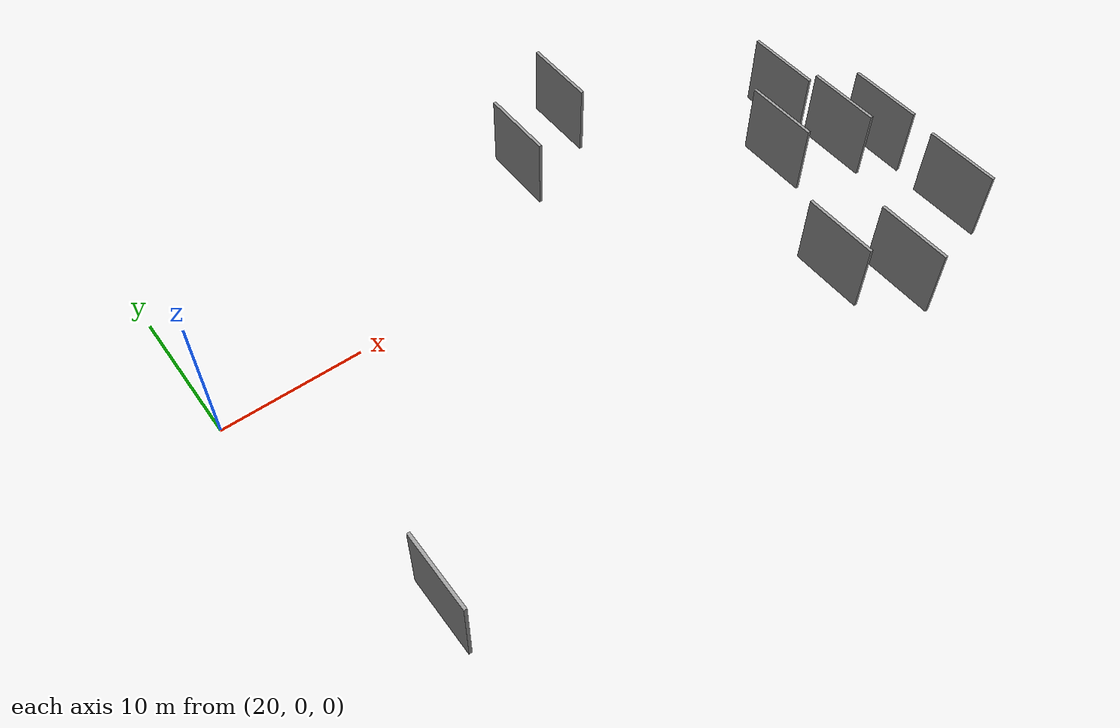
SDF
<sdf version="1.6">
 <world name="default">
  <scene>
   <sky><clouds><speed>12</speed></clouds></sky>
   <ambient>0.4 0.4 0.4 1</ambient>
   <background>0.7 0.7 0.7 1</background>
   <shadows>1</shadows>
  </scene>
  <gravity>0 0 -9.8066</gravity>
  <magnetic_field>6e-06 2.3e-05 -4.2e-05</magnetic_field>
  <physics default="0" name="default_physics" type="ode">
   <ode>
    <solver>
     <type>quick</type>
     <iters>10</iters>
     <sor>1.0</sor>
     <use_dynamic_moi_rescaling>0</use_dynamic_moi_rescaling>
    </solver>
    <constraints>
     <cfm>0</cfm>
     <erp>0.2</erp>
     <contact_max_correcting_vel>100</contact_max_correcting_vel>
     <contact_surface_layer>0.001</contact_surface_layer>
    </constraints>
   </ode>
   <max_step_size>0.004</max_step_size>
   <real_time_factor>1</real_time_factor>
   <real_time_update_rate>250</real_time_update_rate>
  </physics>
  <light name="sun" type="directional">
   <pose>0 0 10 0 0 0</pose>
   <diffuse>0.8 0.8 0.8 1</diffuse>
   <specular>0.2 0.2 0.2 1</specular>
   <attenuation>
    <range>1000</range>
    <constant>0.9</constant>
    <linear>0.01</linear>
    <quadratic>0.001</quadratic>
   </attenuation>
   <direction>-0.5 0.1 -0.9</direction>
  </light>
  <model name="grey_wall_1">
   <static>1</static>
   <pose>65.2828 -9.3041 5.0 0.000000 0.000000 1.570796</pose>
   <link name="link">
    <pose>0 0 2.50 0 0 0</pose>
    <collision name="collision"><geometry><box><size>5.00 0.2 5.00</size></box></geometry></collision>
    <visual name="visual">
     <cast_shadows>0</cast_shadows>
     <geometry><box><size>5.00 0.2 5.00</size></box></geometry>
     <material>
      <script>
       <uri>model://grey_wall/materials/scripts</uri>
       <uri>model://grey_wall/materials/textures</uri>
       <name>vrc/grey_wall</name>
      </script>
     </material>
    </visual>
   </link>
  </model>
  <model name="grey_wall_2">
   <static>1</static>
   <pose>23.2691 -20.3292 5.0 0.000000 0.000000 1.570796</pose>
   <link name="link">
    <pose>0 0 2.50 0 0 0</pose>
    <collision name="collision"><geometry><box><size>5.00 0.2 5.00</size></box></geometry></collision>
    <visual name="visual">
     <cast_shadows>0</cast_shadows>
     <geometry><box><size>5.00 0.2 5.00</size></box></geometry>
     <material>
      <script>
       <uri>model://grey_wall/materials/scripts</uri>
       <uri>model://grey_wall/materials/textures</uri>
       <name>vrc/grey_wall</name>
      </script>
     </material>
    </visual>
   </link>
  </model>
  <model name="grey_wall_3">
   <static>1</static>
   <pose>44.3850 2.5575 5.0 0.000000 0.000000 1.570796</pose>
   <link name="link">
    <pose>0 0 2.50 0 0 0</pose>
    <collision name="collision"><geometry><box><size>5.00 0.2 5.00</size></box></geometry></collision>
    <visual name="visual">
     <cast_shadows>0</cast_shadows>
     <geometry><box><size>5.00 0.2 5.00</size></box></geometry>
     <material>
      <script>
       <uri>model://grey_wall/materials/scripts</uri>
       <uri>model://grey_wall/materials/textures</uri>
       <name>vrc/grey_wall</name>
      </script>
     </material>
    </visual>
   </link>
  </model>
  <model name="grey_wall_4">
   <static>1</static>
   <pose>64.9126 -16.1559 5.0 0.000000 0.000000 1.570796</pose>
   <link name="link">
    <pose>0 0 2.50 0 0 0</pose>
    <collision name="collision"><geometry><box><size>5.00 0.2 5.00</size></box></geometry></collision>
    <visual name="visual">
     <cast_shadows>0</cast_shadows>
     <geometry><box><size>5.00 0.2 5.00</size></box></geometry>
     <material>
      <script>
       <uri>model://grey_wall/materials/scripts</uri>
       <uri>model://grey_wall/materials/textures</uri>
       <name>vrc/grey_wall</name>
      </script>
     </material>
    </visual>
   </link>
  </model>
  <model name="grey_wall_5">
   <static>1</static>
   <pose>58.7457 -6.4984 5.0 0.000000 0.000000 1.570796</pose>
   <link name="link">
    <pose>0 0 2.50 0 0 0</pose>
    <collision name="collision"><geometry><box><size>5.00 0.2 5.00</size></box></geometry></collision>
    <visual name="visual">
     <cast_shadows>0</cast_shadows>
     <geometry><box><size>5.00 0.2 5.00</size></box></geometry>
     <material>
      <script>
       <uri>model://grey_wall/materials/scripts</uri>
       <uri>model://grey_wall/materials/textures</uri>
       <name>vrc/grey_wall</name>
      </script>
     </material>
    </visual>
   </link>
  </model>
  <model name="grey_wall_6">
   <static>1</static>
   <pose>54.6861 -15.8787 5.0 0.000000 0.000000 1.570796</pose>
   <link name="link">
    <pose>0 0 2.50 0 0 0</pose>
    <collision name="collision"><geometry><box><size>5.00 0.2 5.00</size></box></geometry></collision>
    <visual name="visual">
     <cast_shadows>0</cast_shadows>
     <geometry><box><size>5.00 0.2 5.00</size></box></geometry>
     <material>
      <script>
       <uri>model://grey_wall/materials/scripts</uri>
       <uri>model://grey_wall/materials/textures</uri>
       <name>vrc/grey_wall</name>
      </script>
     </material>
    </visual>
   </link>
  </model>
  <model name="grey_wall_7">
   <static>1</static>
   <pose>62.2026 -2.9637 5.0 0.000000 0.000000 1.570796</pose>
   <link name="link">
    <pose>0 0 2.50 0 0 0</pose>
    <collision name="collision"><geometry><box><size>5.00 0.2 5.00</size></box></geometry></collision>
    <visual name="visual">
     <cast_shadows>0</cast_shadows>
     <geometry><box><size>5.00 0.2 5.00</size></box></geometry>
     <material>
      <script>
       <uri>model://grey_wall/materials/scripts</uri>
       <uri>model://grey_wall/materials/textures</uri>
       <name>vrc/grey_wall</name>
      </script>
     </material>
    </visual>
   </link>
  </model>
  <model name="grey_wall_8">
   <static>1</static>
   <pose>62.9134 -7.8805 5.0 0.000000 0.000000 1.570796</pose>
   <link name="link">
    <pose>0 0 2.50 0 0 0</pose>
    <collision name="collision"><geometry><box><size>5.00 0.2 5.00</size></box></geometry></collision>
    <visual name="visual">
     <cast_shadows>0</cast_shadows>
     <geometry><box><size>5.00 0.2 5.00</size></box></geometry>
     <material>
      <script>
       <uri>model://grey_wall/materials/scripts</uri>
       <uri>model://grey_wall/materials/textures</uri>
       <name>vrc/grey_wall</name>
      </script>
     </material>
    </visual>
   </link>
  </model>
  <model name="grey_wall_9">
   <static>1</static>
   <pose>49.5238 4.9630 5.0 0.000000 0.000000 1.570796</pose>
   <link name="link">
    <pose>0 0 2.50 0 0 0</pose>
    <collision name="collision"><geometry><box><size>5.00 0.2 5.00</size></box></geometry></collision>
    <visual name="visual">
     <cast_shadows>0</cast_shadows>
     <geometry><box><size>5.00 0.2 5.00</size></box></geometry>
     <material>
      <script>
       <uri>model://grey_wall/materials/scripts</uri>
       <uri>model://grey_wall/materials/textures</uri>
       <name>vrc/grey_wall</name>
      </script>
     </material>
    </visual>
   </link>
  </model>
  <model name="grey_wall_10">
   <static>1</static>
   <pose>57.8361 -18.7704 5.0 0.000000 0.000000 1.570796</pose>
   <link name="link">
    <pose>0 0 2.50 0 0 0</pose>
    <collision name="collision"><geometry><box><size>5.00 0.2 5.00</size></box></geometry></collision>
    <visual name="visual">
     <cast_shadows>0</cast_shadows>
     <geometry><box><size>5.00 0.2 5.00</size></box></geometry>
     <material>
      <script>
       <uri>model://grey_wall/materials/scripts</uri>
       <uri>model://grey_wall/materials/textures</uri>
       <name>vrc/grey_wall</name>
      </script>
     </material>
    </visual>
   </link>
  </model>
 </world>
</sdf>
